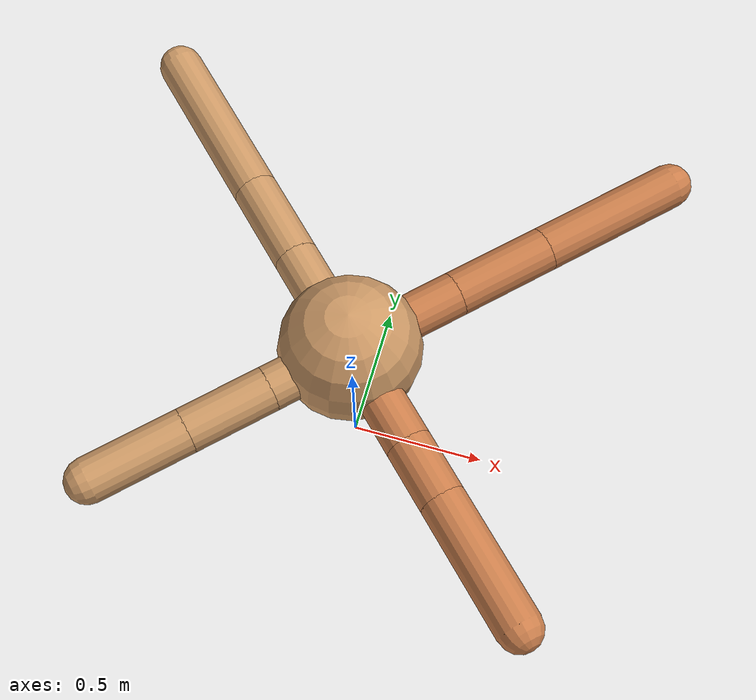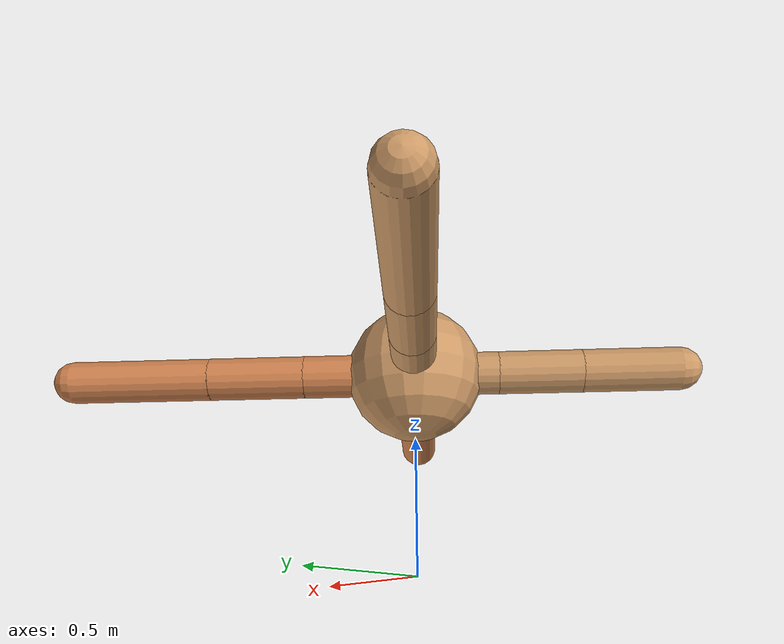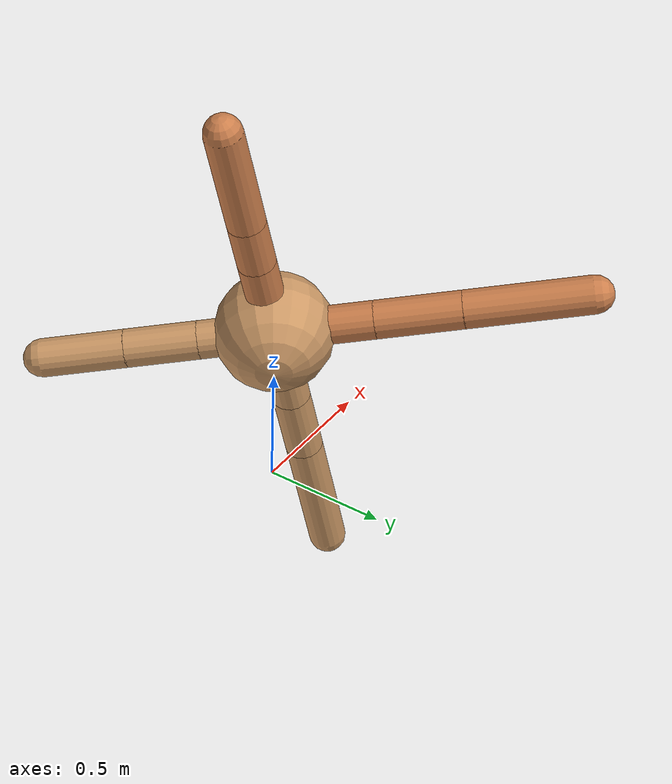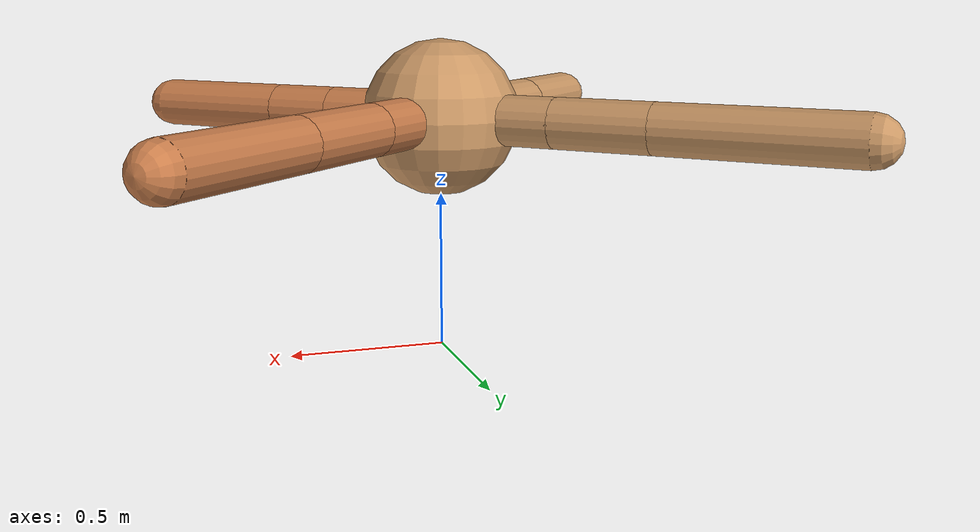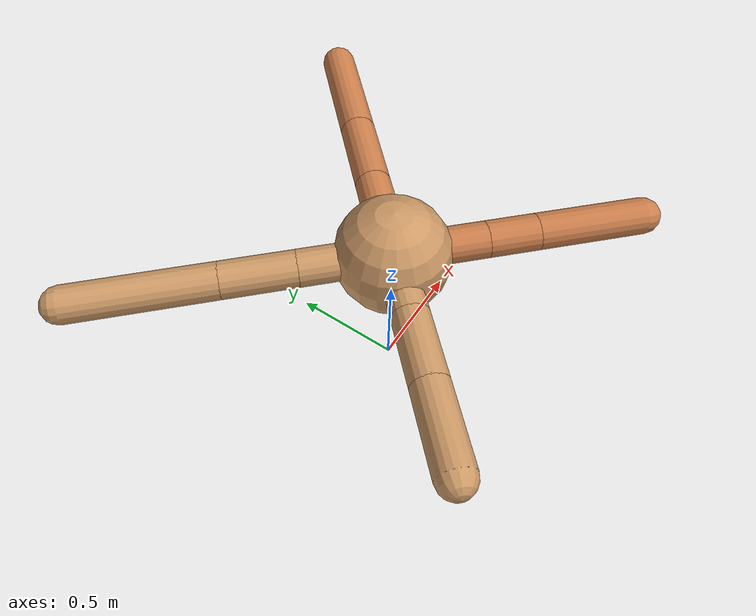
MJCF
<mujoco model="ant">
  <compiler angle="degree" coordinate="local" inertiafromgeom="true" />
  <option integrator="RK4" timestep="0.01" />
  <custom>
    <numeric data="0.0 0.0 0.55 1.0 0.0 0.0 0.0 0.0 1.0 0.0 -1.0 0.0 -1.0 0.0 1.0" name="init_qpos" />
  </custom>
  <default>
    <joint armature="1" damping="1" limited="true" />
    <geom conaffinity="0" condim="3" density="5.0" friction="1.5 0.1 0.1" margin="0.01" rgba="0.8 0.6 0.4 1" />
  </default>
  <worldbody>
    <body name="torso" pos="0 0 0.75">
      <geom name="torso_geom" pos="0 0 0" size="0.25" type="sphere" />

      <body name="front_left_leg" pos="0 0 0">
        <geom fromto="0.0 0.0 0.0 0.29233552445552163 0.29233552445552163 0.0" name="aux_1_geom" size="0.08" type="capsule" rgba=".8 .5 .3 1" />
        <body name="aux_1" pos="0.29233552445552163 0.29233552445552163 0.0">
          <joint axis="0 0 1" name="hip_1" pos="0.0 0.0 0.0" range="-40 40" type="hinge" />
          <geom fromto="0.0 0.0 0.0 0.2558772381646919 0.2558772381646919 0.0" name="left_leg_geom" size="0.08" type="capsule" rgba=".8 .5 .3 1" />
          <body pos="0.2558772381646919 0.2558772381646919 0.0" name="front_left_foot">
            <joint axis="-1 1 0" name="ankle_1" pos="0.0 0.0 0.0" range="30 100" type="hinge" />
            <geom fromto="0.0 0.0 0.0 0.37604382982098783 0.37604382982098783 0.0" name="left_ankle_geom" size="0.08" type="capsule" rgba=".8 .5 .3 1" />
          </body>
        </body>
      </body>
      <body name="front_right_leg" pos="0 0 0">
        <geom fromto="0.0 0.0 0.0 -0.2816005191092128 0.2816005191092128 0.0" name="aux_2_geom" size="0.08" type="capsule" />
        <body name="aux_2" pos="-0.2816005191092128 0.2816005191092128 0.0">
          <joint axis="0 0 1" name="hip_2" pos="0.0 0.0 0.0" range="-40 40" type="hinge" />
          <geom fromto="0.0 0.0 0.0 -0.2231104444681276 0.2231104444681276 0.0" name="right_leg_geom" size="0.08" type="capsule" />
          <body pos="-0.2231104444681276 0.2231104444681276 0.0" name="front_right_foot">
            <joint axis="1 1 0" name="ankle_2" pos="0.0 0.0 0.0" range="-100 -30" type="hinge" />
            <geom fromto="0.0 0.0 0.0 -0.4385120902363426 0.4385120902363426 0.0" name="right_ankle_geom" size="0.08" type="capsule" />
          </body>
        </body>
      </body>
      <body name="left_back_leg" pos="0 0 0">
        <geom fromto="0.0 0.0 0.0 -0.2200620776197839 -0.2200620776197839 0.0" name="aux_3_geom" size="0.08" type="capsule" />
        <body name="aux_3" pos="-0.2200620776197839 -0.2200620776197839 0.0">
          <joint axis="0 0 1" name="hip_3" pos="0.0 0.0 0.0" range="-40 40" type="hinge" />
          <geom fromto="0.0 0.0 0.0 -0.2164550337667568 -0.2164550337667568 0.0" name="back_leg_geom" size="0.08" type="capsule" />
          <body pos="-0.2164550337667568 -0.2164550337667568 0.0" name="left_back_foot">
            <joint axis="-1 1 0" name="ankle_3" pos="0.0 0.0 0.0" range="-100 -30" type="hinge" />
            <geom fromto="0.0 0.0 0.0 -0.2496039038341511 -0.2496039038341511 0.0" name="third_ankle_geom" size="0.08" type="capsule" />
          </body>
        </body>
      </body>
      <body name="right_back_leg" pos="0 0 0">
        <geom fromto="0.0 0.0 0.0 0.2837248790373229 -0.2837248790373229 0.0" name="aux_4_geom" size="0.08" type="capsule" rgba=".8 .5 .3 1" />
        <body name="aux_4" pos="0.2837248790373229 -0.2837248790373229 0.0">
          <joint axis="0 0 1" name="hip_4" pos="0.0 0.0 0.0" range="-40 40" type="hinge" />
          <geom fromto="0.0 0.0 0.0 0.15567541092987577 -0.15567541092987577 0.0" name="rightback_leg_geom" size="0.08" type="capsule" rgba=".8 .5 .3 1" />
          <body pos="0.15567541092987577 -0.15567541092987577 0.0" name="right_back_foot">
            <joint axis="1 1 0" name="ankle_4" pos="0.0 0.0 0.0" range="30 100" type="hinge" />
            <geom fromto="0.0 0.0 0.0 0.33643573387157616 -0.33643573387157616 0.0" name="fourth_ankle_geom" size="0.08" type="capsule" rgba=".8 .5 .3 1" />
          </body>
        </body>
      </body>
    </body>
  </worldbody>
  <actuator>
    <motor ctrllimited="true" ctrlrange="-1.0 1.0" joint="hip_4" gear="150" />
    <motor ctrllimited="true" ctrlrange="-1.0 1.0" joint="ankle_4" gear="150" />
    <motor ctrllimited="true" ctrlrange="-1.0 1.0" joint="hip_1" gear="150" />
    <motor ctrllimited="true" ctrlrange="-1.0 1.0" joint="ankle_1" gear="150" />
    <motor ctrllimited="true" ctrlrange="-1.0 1.0" joint="hip_2" gear="150" />
    <motor ctrllimited="true" ctrlrange="-1.0 1.0" joint="ankle_2" gear="150" />
    <motor ctrllimited="true" ctrlrange="-1.0 1.0" joint="hip_3" gear="150" />
    <motor ctrllimited="true" ctrlrange="-1.0 1.0" joint="ankle_3" gear="150" />
  </actuator>
</mujoco>
